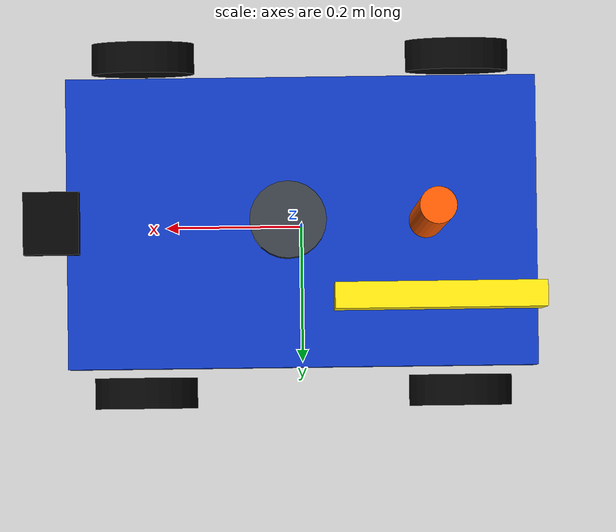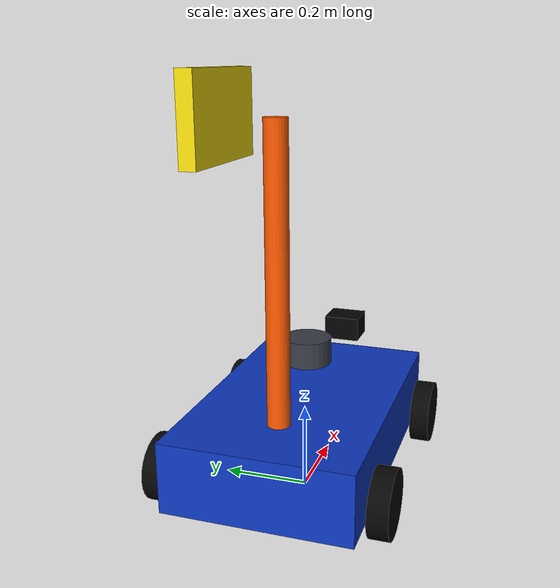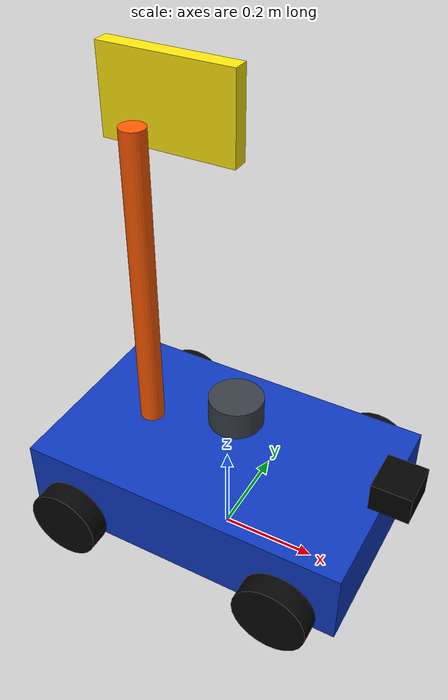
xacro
<?xml version="1.0"?>
<robot name="smart_car" xmlns:xacro="http://www.ros.org/wiki/xacro">
  <xacro:property name="base_length" value="0.68"/>
  <xacro:property name="base_width" value="0.42"/>
  <xacro:property name="base_height" value="0.16"/>
  <xacro:property name="wheel_radius" value="0.075"/>
  <xacro:property name="wheel_width" value="0.045"/>
  <xacro:property name="wheel_z" value="-0.035"/>
  <xacro:property name="wheel_y" value="0.245"/>
  <xacro:property name="front_x" value="0.23"/>
  <xacro:property name="rear_x" value="-0.23"/>

  <link name="base_footprint"/>

  <joint name="base_joint" type="fixed">
    <parent link="base_footprint"/>
    <child link="base_link"/>
    <origin xyz="0 0 0.16" rpy="0 0 0"/>
  </joint>

  <link name="base_link">
    <visual>
      <geometry><box size="${base_length} ${base_width} ${base_height}"/></geometry>
      <material name="blue"><color rgba="0.05 0.22 0.75 1"/></material>
    </visual>
    <visual name="visibility_mast">
      <origin xyz="-0.18 0 0.36" rpy="0 0 0"/>
      <geometry><cylinder radius="0.025" length="0.72"/></geometry>
      <material name="bright_orange"><color rgba="1.0 0.35 0.0 1"/></material>
    </visual>
    <visual name="visibility_flag">
      <origin xyz="-0.18 0.12 0.72" rpy="0 0 0"/>
      <geometry><box size="0.28 0.035 0.18"/></geometry>
      <material name="bright_yellow"><color rgba="1.0 0.9 0.05 1"/></material>
    </visual>
    <collision><geometry><box size="${base_length} ${base_width} ${base_height}"/></geometry></collision>
    <inertial>
      <mass value="7.0"/>
      <origin xyz="0 0 0"/>
      <inertia ixx="0.10" ixy="0" ixz="0" iyy="0.18" iyz="0" izz="0.22"/>
    </inertial>
  </link>

  <xacro:macro name="drive_wheel" params="name x y">
    <link name="${name}">
      <visual>
        <origin rpy="1.5708 0 0"/>
        <geometry><cylinder radius="${wheel_radius}" length="${wheel_width}"/></geometry>
        <material name="dark"><color rgba="0.02 0.02 0.02 1"/></material>
      </visual>
      <collision>
        <origin rpy="1.5708 0 0"/>
        <geometry><cylinder radius="${wheel_radius}" length="${wheel_width}"/></geometry>
      </collision>
      <inertial>
        <mass value="0.35"/>
        <origin xyz="0 0 0"/>
        <inertia ixx="0.001" ixy="0" ixz="0" iyy="0.001" iyz="0" izz="0.001"/>
      </inertial>
    </link>
    <joint name="${name}_joint" type="continuous">
      <parent link="base_link"/>
      <child link="${name}"/>
      <origin xyz="${x} ${y} ${wheel_z}" rpy="0 0 0"/>
      <axis xyz="0 1 0"/>
    </joint>
  </xacro:macro>

  <xacro:macro name="visual_wheel" params="name x y">
    <link name="${name}">
      <visual>
        <origin rpy="1.5708 0 0"/>
        <geometry><cylinder radius="${wheel_radius}" length="${wheel_width}"/></geometry>
        <material name="dark"><color rgba="0.02 0.02 0.02 1"/></material>
      </visual>
      <collision>
        <origin rpy="1.5708 0 0"/>
        <geometry><cylinder radius="${wheel_radius}" length="${wheel_width}"/></geometry>
      </collision>
      <inertial>
        <mass value="0.05"/>
        <origin xyz="0 0 0"/>
        <inertia ixx="0.0001" ixy="0" ixz="0" iyy="0.0001" iyz="0" izz="0.0001"/>
      </inertial>
    </link>
    <joint name="${name}_joint" type="fixed">
      <parent link="base_link"/>
      <child link="${name}"/>
      <origin xyz="${x} ${y} ${wheel_z}" rpy="0 0 0"/>
    </joint>
  </xacro:macro>

  <xacro:drive_wheel name="left_front_wheel" x="${front_x}" y="${wheel_y}"/>
  <xacro:drive_wheel name="left_rear_wheel" x="${rear_x}" y="${wheel_y}"/>
  <xacro:drive_wheel name="right_front_wheel" x="${front_x}" y="-${wheel_y}"/>
  <xacro:drive_wheel name="right_rear_wheel" x="${rear_x}" y="-${wheel_y}"/>

  <link name="camera_link">
    <visual>
      <geometry><box size="0.08 0.09 0.06"/></geometry>
      <material name="black"><color rgba="0.01 0.01 0.01 1"/></material>
    </visual>
    <collision><geometry><box size="0.08 0.09 0.06"/></geometry></collision>
    <inertial>
      <mass value="0.1"/>
      <origin xyz="0 0 0"/>
      <inertia ixx="0.0001" ixy="0" ixz="0" iyy="0.0001" iyz="0" izz="0.0001"/>
    </inertial>
  </link>

  <joint name="camera_joint" type="fixed">
    <parent link="base_link"/>
    <child link="camera_link"/>
    <origin xyz="0.36 0 0.13" rpy="0 0 0"/>
  </joint>

  <link name="lidar_link">
    <visual>
      <geometry><cylinder radius="0.055" length="0.06"/></geometry>
      <material name="lidar_gray"><color rgba="0.22 0.24 0.27 1"/></material>
    </visual>
    <collision><geometry><cylinder radius="0.055" length="0.06"/></geometry></collision>
    <inertial>
      <mass value="0.12"/>
      <origin xyz="0 0 0"/>
      <inertia ixx="0.00008" ixy="0" ixz="0" iyy="0.00008" iyz="0" izz="0.00012"/>
    </inertial>
  </link>

  <joint name="lidar_joint" type="fixed">
    <parent link="base_link"/>
    <child link="lidar_link"/>
    <origin xyz="0.02 0 0.18" rpy="0 0 0"/>
  </joint>

  <gazebo reference="base_link"><material>Gazebo/Blue</material></gazebo>
  <gazebo reference="left_front_wheel"><material>Gazebo/Black</material></gazebo>
  <gazebo reference="left_rear_wheel"><material>Gazebo/Black</material></gazebo>
  <gazebo reference="right_front_wheel"><material>Gazebo/Black</material></gazebo>
  <gazebo reference="right_rear_wheel"><material>Gazebo/Black</material></gazebo>
  <gazebo reference="lidar_link"><material>Gazebo/DarkGrey</material></gazebo>

  <gazebo>
    <plugin name="differential_drive_controller" filename="libgazebo_ros_diff_drive.so">
      <robotNamespace>/</robotNamespace>
      <commandTopic>/cmd_vel</commandTopic>
      <odometryTopic>odom</odometryTopic>
      <odometryFrame>odom</odometryFrame>
      <odometrySource>world</odometrySource>
      <robotBaseFrame>base_footprint</robotBaseFrame>
      <publishWheelTF>false</publishWheelTF>
      <publishOdomTF>true</publishOdomTF>
      <publishWheelJointState>true</publishWheelJointState>
      <leftJoint>left_rear_wheel_joint</leftJoint>
      <rightJoint>right_rear_wheel_joint</rightJoint>
      <wheelSeparation>0.49</wheelSeparation>
      <wheelDiameter>0.15</wheelDiameter>
      <wheelAcceleration>2.0</wheelAcceleration>
      <wheelTorque>10.0</wheelTorque>
      <updateRate>50</updateRate>
    </plugin>
  </gazebo>

  <gazebo reference="camera_link">
    <material>Gazebo/Black</material>
    <sensor type="camera" name="front_camera_sensor">
      <always_on>true</always_on>
      <visualize>true</visualize>
      <update_rate>20.0</update_rate>
      <camera name="front_camera">
        <horizontal_fov>1.047</horizontal_fov>
        <image><width>640</width><height>480</height><format>R8G8B8</format></image>
        <clip><near>0.05</near><far>30</far></clip>
      </camera>
      <plugin name="front_camera_controller" filename="libgazebo_ros_camera.so">
        <alwaysOn>true</alwaysOn>
        <updateRate>20.0</updateRate>
        <cameraName>camera</cameraName>
        <imageTopicName>image_raw</imageTopicName>
        <cameraInfoTopicName>camera_info</cameraInfoTopicName>
        <frameName>camera_link</frameName>
      </plugin>
    </sensor>
  </gazebo>

  <gazebo reference="lidar_link">
    <sensor type="ray" name="smart_car_360_lidar">
      <always_on>true</always_on>
      <visualize>true</visualize>
      <update_rate>10.0</update_rate>
      <ray>
        <scan>
          <horizontal>
            <samples>720</samples>
            <resolution>1</resolution>
            <min_angle>-3.14159265</min_angle>
            <max_angle>3.14159265</max_angle>
          </horizontal>
        </scan>
        <range>
          <min>0.12</min>
          <max>12.0</max>
          <resolution>0.01</resolution>
        </range>
        <noise>
          <type>gaussian</type>
          <mean>0.0</mean>
          <stddev>0.005</stddev>
        </noise>
      </ray>
      <plugin name="smart_car_lidar_controller" filename="libgazebo_ros_laser.so">
        <robotNamespace>/</robotNamespace>
        <topicName>/scan</topicName>
        <frameName>lidar_link</frameName>
      </plugin>
    </sensor>
  </gazebo>

</robot>
